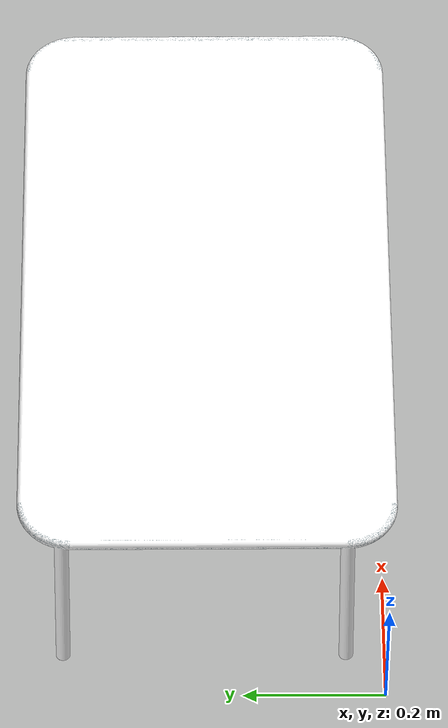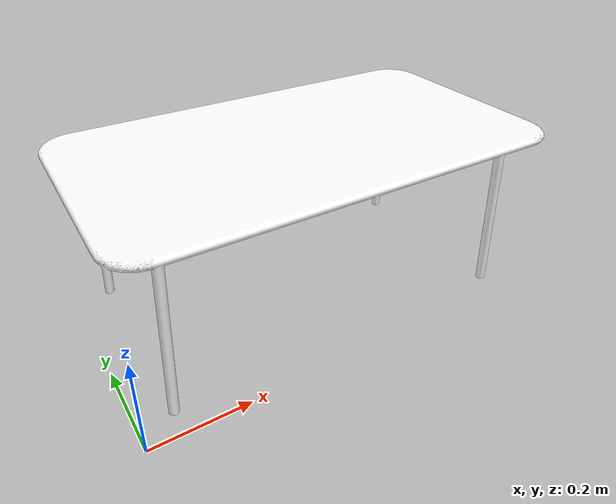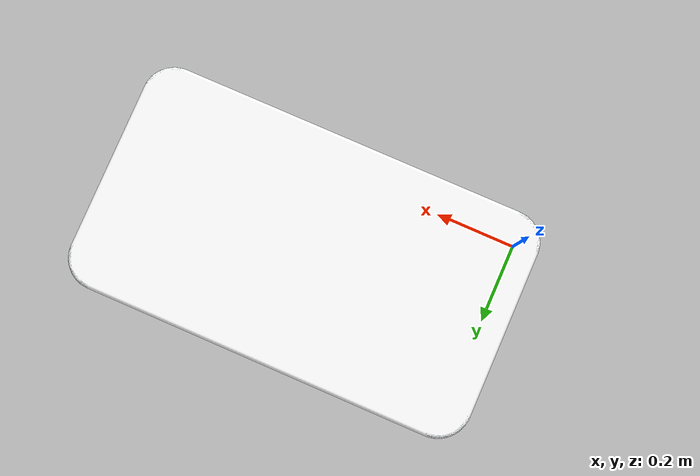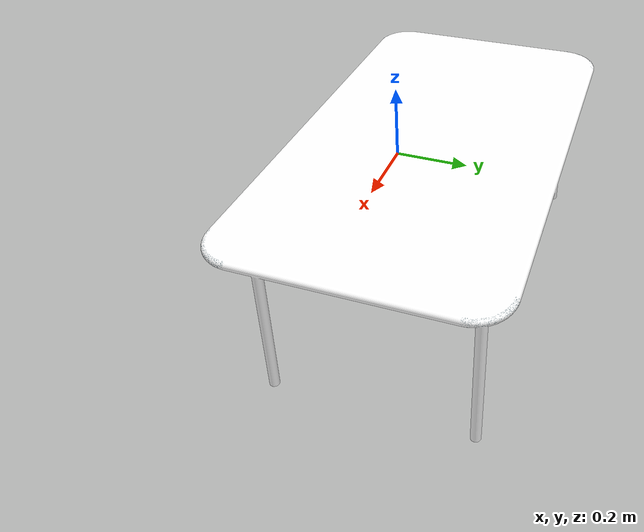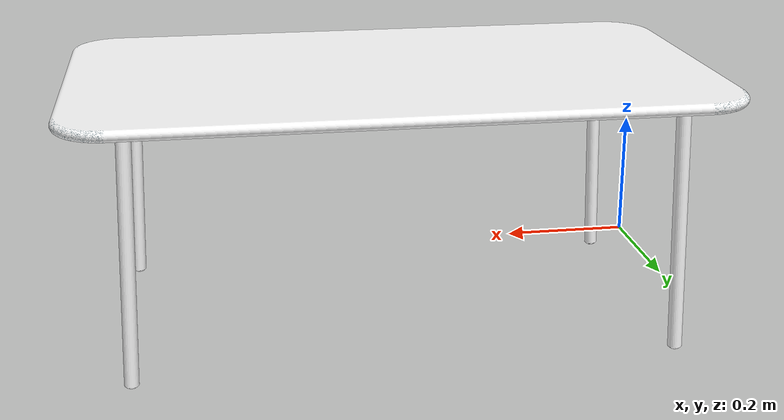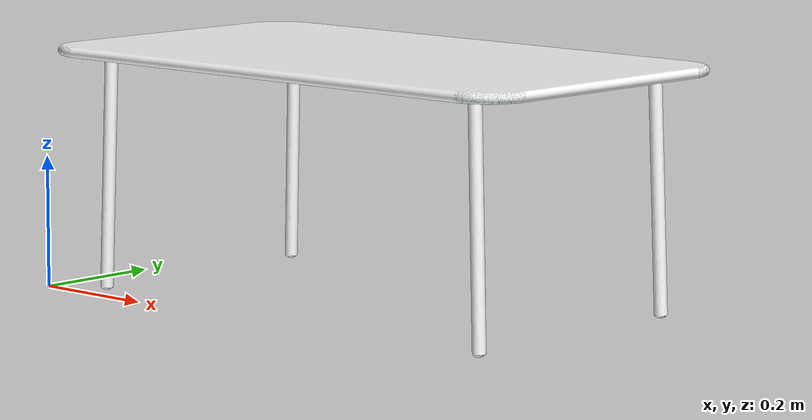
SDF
<?xml version="1.0" ?>
<sdf version="1.5">
	<model name="table">
		<static>true</static>
		<link name="table_link">
			<collision name="table_collision">
				<pose>0.45 0.25 0</pose>
				<geometry>
					<box>
						<size>0.75 0.5 0.75</size>
					</box>
				</geometry>
			</collision>
			<visual name="table_mesh">
				<cast_shadows>true</cast_shadows>
				<geometry>
					<mesh>
						<uri>model://table/meshes/model.dae</uri>
					</mesh>
				</geometry>
			</visual>
    	</link>
  	</model>
</sdf>
